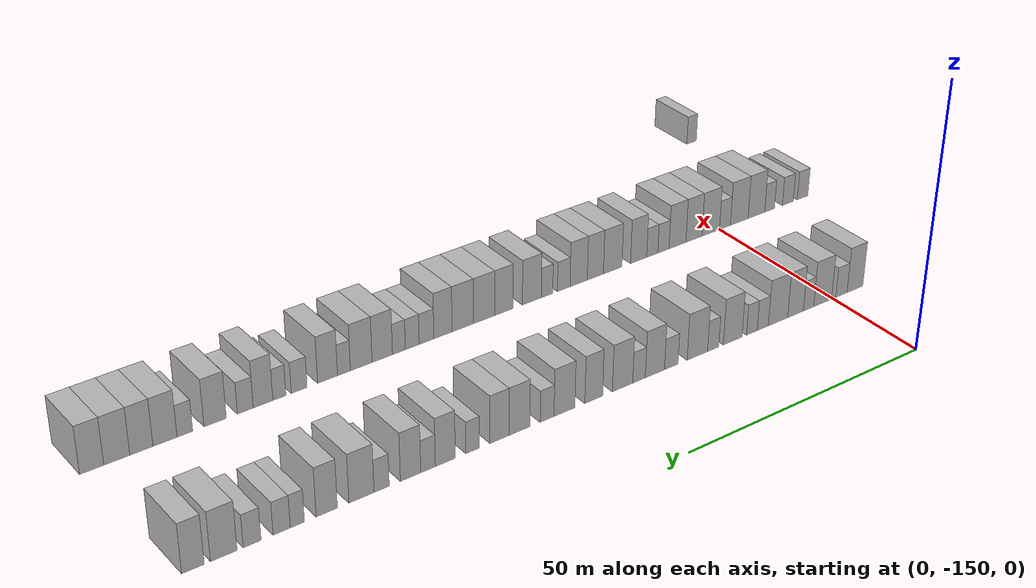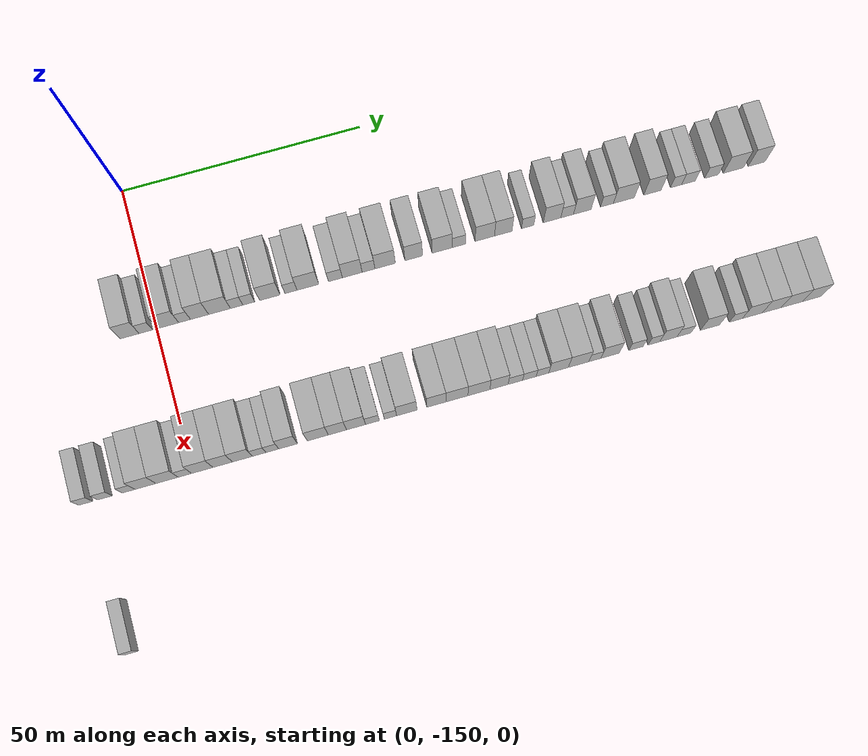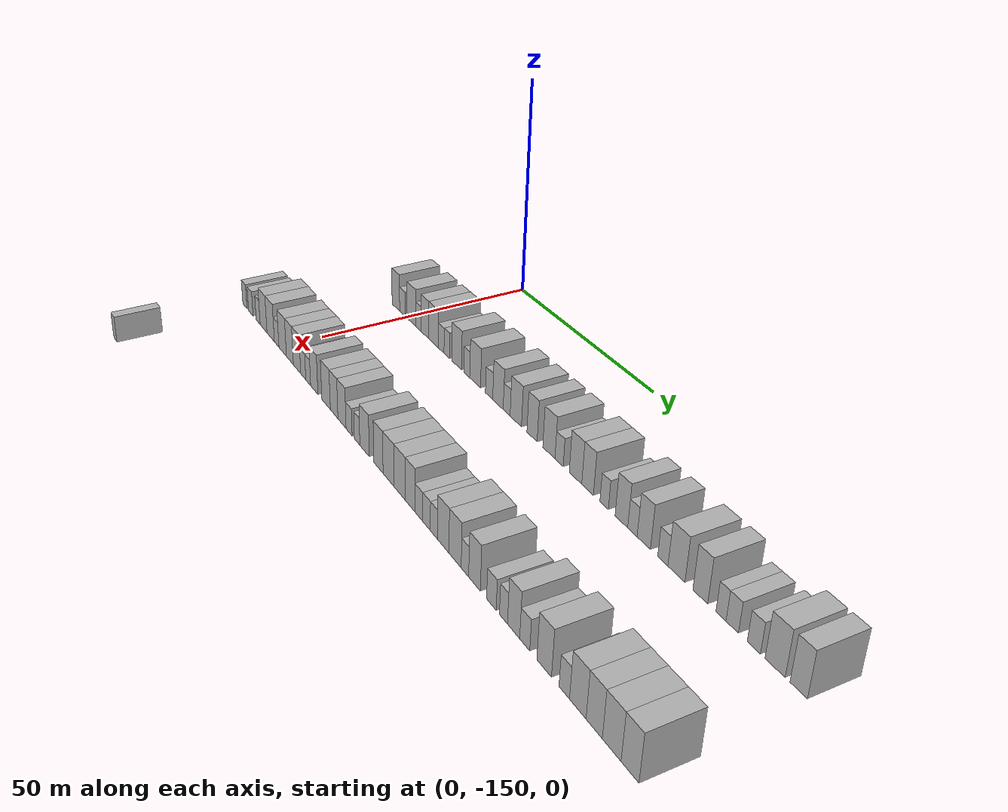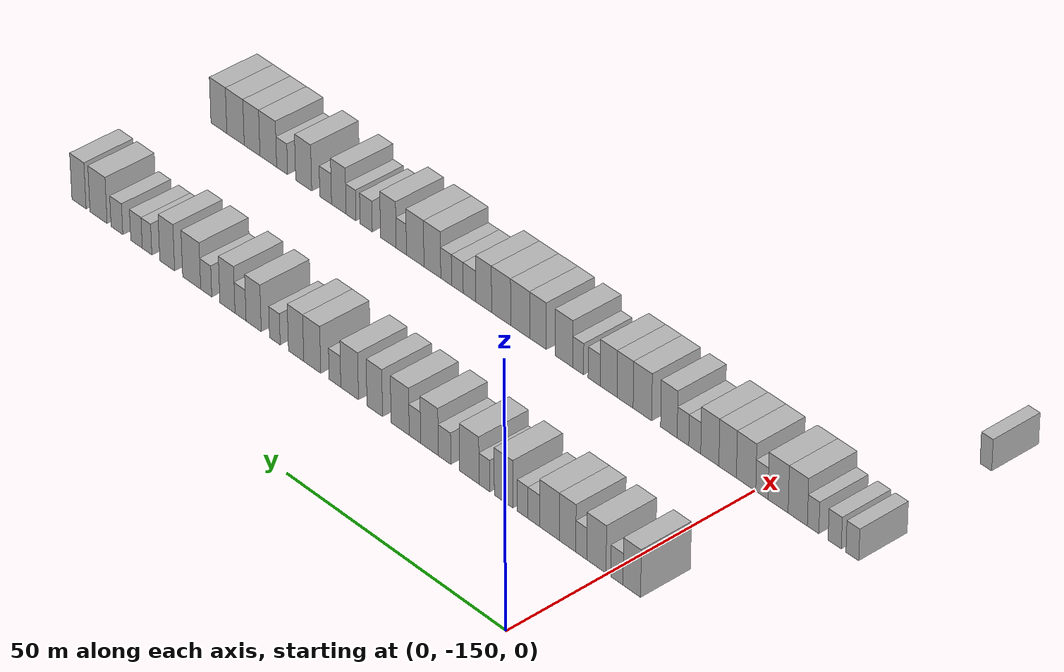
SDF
<sdf version="1.6">
 <world name="default">
  <model name="building_73">
   <static>1</static>
   <pose>25.0000 -155.4128 0 0.000000 0.000000 0.000000</pose>
   <link name="link">
    <pose>0 0 4.50 0 0 0</pose>
    <collision name="collision"><geometry><box><size>10.0000 3.8556 9.0000</size></box></geometry></collision>
    <visual name="visual">
     <cast_shadows>0</cast_shadows>
     <geometry><box><size>10.0000 3.8556 9.0000</size></box></geometry>
     <material>
      <script>
       <uri>model://HANNAS_wall/materials/scripts</uri>
       <uri>model://HANNAS_wall/materials/textures</uri>
       <name>vrc/HANNAS_wall</name>
      </script>
     </material>
    </visual>
   </link>
  </model>
  <model name="building_74">
   <static>1</static>
   <pose>25.0000 -152.1207 0 0.000000 0.000000 0.000000</pose>
   <link name="link">
    <pose>0 0 3.00 0 0 0</pose>
    <collision name="collision"><geometry><box><size>10.0000 2.7286 6.0000</size></box></geometry></collision>
    <visual name="visual">
     <cast_shadows>0</cast_shadows>
     <geometry><box><size>10.0000 2.7286 6.0000</size></box></geometry>
     <material>
      <script>
       <uri>model://HANNAS_wall/materials/scripts</uri>
       <uri>model://HANNAS_wall/materials/textures</uri>
       <name>vrc/HANNAS_wall</name>
      </script>
     </material>
    </visual>
   </link>
  </model>
  <model name="building_75">
   <static>1</static>
   <pose>25.0000 -147.6016 0 0.000000 0.000000 0.000000</pose>
   <link name="link">
    <pose>0 0 4.50 0 0 0</pose>
    <collision name="collision"><geometry><box><size>10.0000 4.3098 9.0000</size></box></geometry></collision>
    <visual name="visual">
     <cast_shadows>0</cast_shadows>
     <geometry><box><size>10.0000 4.3098 9.0000</size></box></geometry>
     <material>
      <script>
       <uri>model://HANNAS_wall/materials/scripts</uri>
       <uri>model://HANNAS_wall/materials/textures</uri>
       <name>vrc/HANNAS_wall</name>
      </script>
     </material>
    </visual>
   </link>
  </model>
  <model name="building_76">
   <static>1</static>
   <pose>25.0000 -144.2454 0 0.000000 0.000000 0.000000</pose>
   <link name="link">
    <pose>0 0 3.00 0 0 0</pose>
    <collision name="collision"><geometry><box><size>10.0000 2.4025 6.0000</size></box></geometry></collision>
    <visual name="visual">
     <cast_shadows>0</cast_shadows>
     <geometry><box><size>10.0000 2.4025 6.0000</size></box></geometry>
     <material>
      <script>
       <uri>model://HANNAS_wall/materials/scripts</uri>
       <uri>model://HANNAS_wall/materials/textures</uri>
       <name>vrc/HANNAS_wall</name>
      </script>
     </material>
    </visual>
   </link>
  </model>
  <model name="building_77">
   <static>1</static>
   <pose>25.0000 -141.1890 0 0.000000 0.000000 0.000000</pose>
   <link name="link">
    <pose>0 0 4.50 0 0 0</pose>
    <collision name="collision"><geometry><box><size>10.0000 3.7103 9.0000</size></box></geometry></collision>
    <visual name="visual">
     <cast_shadows>0</cast_shadows>
     <geometry><box><size>10.0000 3.7103 9.0000</size></box></geometry>
     <material>
      <script>
       <uri>model://HANNAS_wall/materials/scripts</uri>
       <uri>model://HANNAS_wall/materials/textures</uri>
       <name>vrc/HANNAS_wall</name>
      </script>
     </material>
    </visual>
   </link>
  </model>
  <model name="building_78">
   <static>1</static>
   <pose>25.0000 -137.1038 0 0.000000 0.000000 0.000000</pose>
   <link name="link">
    <pose>0 0 4.50 0 0 0</pose>
    <collision name="collision"><geometry><box><size>10.0000 4.4602 9.0000</size></box></geometry></collision>
    <visual name="visual">
     <cast_shadows>0</cast_shadows>
     <geometry><box><size>10.0000 4.4602 9.0000</size></box></geometry>
     <material>
      <script>
       <uri>model://HANNAS_wall/materials/scripts</uri>
       <uri>model://HANNAS_wall/materials/textures</uri>
       <name>vrc/HANNAS_wall</name>
      </script>
     </material>
    </visual>
   </link>
  </model>
  <model name="building_79">
   <static>1</static>
   <pose>25.0000 -133.5972 0 0.000000 0.000000 0.000000</pose>
   <link name="link">
    <pose>0 0 3.00 0 0 0</pose>
    <collision name="collision"><geometry><box><size>10.0000 2.5529 6.0000</size></box></geometry></collision>
    <visual name="visual">
     <cast_shadows>0</cast_shadows>
     <geometry><box><size>10.0000 2.5529 6.0000</size></box></geometry>
     <material>
      <script>
       <uri>model://HANNAS_wall/materials/scripts</uri>
       <uri>model://HANNAS_wall/materials/textures</uri>
       <name>vrc/HANNAS_wall</name>
      </script>
     </material>
    </visual>
   </link>
  </model>
  <model name="building_80">
   <static>1</static>
   <pose>25.0000 -131.0993 0 0.000000 0.000000 0.000000</pose>
   <link name="link">
    <pose>0 0 3.00 0 0 0</pose>
    <collision name="collision"><geometry><box><size>10.0000 2.4430 6.0000</size></box></geometry></collision>
    <visual name="visual">
     <cast_shadows>0</cast_shadows>
     <geometry><box><size>10.0000 2.4430 6.0000</size></box></geometry>
     <material>
      <script>
       <uri>model://HANNAS_wall/materials/scripts</uri>
       <uri>model://HANNAS_wall/materials/textures</uri>
       <name>vrc/HANNAS_wall</name>
      </script>
     </material>
    </visual>
   </link>
  </model>
  <model name="building_81">
   <static>1</static>
   <pose>25.0000 -126.7704 0 0.000000 0.000000 0.000000</pose>
   <link name="link">
    <pose>0 0 4.50 0 0 0</pose>
    <collision name="collision"><geometry><box><size>10.0000 4.2149 9.0000</size></box></geometry></collision>
    <visual name="visual">
     <cast_shadows>0</cast_shadows>
     <geometry><box><size>10.0000 4.2149 9.0000</size></box></geometry>
     <material>
      <script>
       <uri>model://HANNAS_wall/materials/scripts</uri>
       <uri>model://HANNAS_wall/materials/textures</uri>
       <name>vrc/HANNAS_wall</name>
      </script>
     </material>
    </visual>
   </link>
  </model>
  <model name="building_82">
   <static>1</static>
   <pose>25.0000 -122.4175 0 0.000000 0.000000 0.000000</pose>
   <link name="link">
    <pose>0 0 3.00 0 0 0</pose>
    <collision name="collision"><geometry><box><size>10.0000 2.4910 6.0000</size></box></geometry></collision>
    <visual name="visual">
     <cast_shadows>0</cast_shadows>
     <geometry><box><size>10.0000 2.4910 6.0000</size></box></geometry>
     <material>
      <script>
       <uri>model://HANNAS_wall/materials/scripts</uri>
       <uri>model://HANNAS_wall/materials/textures</uri>
       <name>vrc/HANNAS_wall</name>
      </script>
     </material>
    </visual>
   </link>
  </model>
  <model name="building_83">
   <static>1</static>
   <pose>25.0000 -118.9380 0 0.000000 0.000000 0.000000</pose>
   <link name="link">
    <pose>0 0 4.50 0 0 0</pose>
    <collision name="collision"><geometry><box><size>10.0000 4.4680 9.0000</size></box></geometry></collision>
    <visual name="visual">
     <cast_shadows>0</cast_shadows>
     <geometry><box><size>10.0000 4.4680 9.0000</size></box></geometry>
     <material>
      <script>
       <uri>model://HANNAS_wall/materials/scripts</uri>
       <uri>model://HANNAS_wall/materials/textures</uri>
       <name>vrc/HANNAS_wall</name>
      </script>
     </material>
    </visual>
   </link>
  </model>
  <model name="building_84">
   <static>1</static>
   <pose>25.0000 -113.2553 0 0.000000 0.000000 0.000000</pose>
   <link name="link">
    <pose>0 0 3.00 0 0 0</pose>
    <collision name="collision"><geometry><box><size>10.0000 2.8972 6.0000</size></box></geometry></collision>
    <visual name="visual">
     <cast_shadows>0</cast_shadows>
     <geometry><box><size>10.0000 2.8972 6.0000</size></box></geometry>
     <material>
      <script>
       <uri>model://HANNAS_wall/materials/scripts</uri>
       <uri>model://HANNAS_wall/materials/textures</uri>
       <name>vrc/HANNAS_wall</name>
      </script>
     </material>
    </visual>
   </link>
  </model>
  <model name="building_85">
   <static>1</static>
   <pose>25.0000 -109.7602 0 0.000000 0.000000 0.000000</pose>
   <link name="link">
    <pose>0 0 4.50 0 0 0</pose>
    <collision name="collision"><geometry><box><size>10.0000 4.0931 9.0000</size></box></geometry></collision>
    <visual name="visual">
     <cast_shadows>0</cast_shadows>
     <geometry><box><size>10.0000 4.0931 9.0000</size></box></geometry>
     <material>
      <script>
       <uri>model://HANNAS_wall/materials/scripts</uri>
       <uri>model://HANNAS_wall/materials/textures</uri>
       <name>vrc/HANNAS_wall</name>
      </script>
     </material>
    </visual>
   </link>
  </model>
  <model name="building_86">
   <static>1</static>
   <pose>25.0000 -106.3865 0 0.000000 0.000000 0.000000</pose>
   <link name="link">
    <pose>0 0 3.00 0 0 0</pose>
    <collision name="collision"><geometry><box><size>10.0000 2.6543 6.0000</size></box></geometry></collision>
    <visual name="visual">
     <cast_shadows>0</cast_shadows>
     <geometry><box><size>10.0000 2.6543 6.0000</size></box></geometry>
     <material>
      <script>
       <uri>model://HANNAS_wall/materials/scripts</uri>
       <uri>model://HANNAS_wall/materials/textures</uri>
       <name>vrc/HANNAS_wall</name>
      </script>
     </material>
    </visual>
   </link>
  </model>
  <model name="building_87">
   <static>1</static>
   <pose>25.0000 -102.9410 0 0.000000 0.000000 0.000000</pose>
   <link name="link">
    <pose>0 0 4.50 0 0 0</pose>
    <collision name="collision"><geometry><box><size>10.0000 4.2367 9.0000</size></box></geometry></collision>
    <visual name="visual">
     <cast_shadows>0</cast_shadows>
     <geometry><box><size>10.0000 4.2367 9.0000</size></box></geometry>
     <material>
      <script>
       <uri>model://HANNAS_wall/materials/scripts</uri>
       <uri>model://HANNAS_wall/materials/textures</uri>
       <name>vrc/HANNAS_wall</name>
      </script>
     </material>
    </visual>
   </link>
  </model>
  <model name="building_88">
   <static>1</static>
   <pose>25.0000 -96.9909 0 0.000000 0.000000 0.000000</pose>
   <link name="link">
    <pose>0 0 4.50 0 0 0</pose>
    <collision name="collision"><geometry><box><size>10.0000 3.6634 9.0000</size></box></geometry></collision>
    <visual name="visual">
     <cast_shadows>0</cast_shadows>
     <geometry><box><size>10.0000 3.6634 9.0000</size></box></geometry>
     <material>
      <script>
       <uri>model://HANNAS_wall/materials/scripts</uri>
       <uri>model://HANNAS_wall/materials/textures</uri>
       <name>vrc/HANNAS_wall</name>
      </script>
     </material>
    </visual>
   </link>
  </model>
  <model name="building_89">
   <static>1</static>
   <pose>25.0000 -91.0626 0 0.000000 0.000000 0.000000</pose>
   <link name="link">
    <pose>0 0 4.50 0 0 0</pose>
    <collision name="collision"><geometry><box><size>10.0000 4.1933 9.0000</size></box></geometry></collision>
    <visual name="visual">
     <cast_shadows>0</cast_shadows>
     <geometry><box><size>10.0000 4.1933 9.0000</size></box></geometry>
     <material>
      <script>
       <uri>model://HANNAS_wall/materials/scripts</uri>
       <uri>model://HANNAS_wall/materials/textures</uri>
       <name>vrc/HANNAS_wall</name>
      </script>
     </material>
    </visual>
   </link>
  </model>
  <model name="building_90">
   <static>1</static>
   <pose>25.0000 -87.5761 0 0.000000 0.000000 0.000000</pose>
   <link name="link">
    <pose>0 0 3.00 0 0 0</pose>
    <collision name="collision"><geometry><box><size>10.0000 2.7798 6.0000</size></box></geometry></collision>
    <visual name="visual">
     <cast_shadows>0</cast_shadows>
     <geometry><box><size>10.0000 2.7798 6.0000</size></box></geometry>
     <material>
      <script>
       <uri>model://HANNAS_wall/materials/scripts</uri>
       <uri>model://HANNAS_wall/materials/textures</uri>
       <name>vrc/HANNAS_wall</name>
      </script>
     </material>
    </visual>
   </link>
  </model>
  <model name="building_91">
   <static>1</static>
   <pose>25.0000 -82.1534 0 0.000000 0.000000 0.000000</pose>
   <link name="link">
    <pose>0 0 4.50 0 0 0</pose>
    <collision name="collision"><geometry><box><size>10.0000 4.0656 9.0000</size></box></geometry></collision>
    <visual name="visual">
     <cast_shadows>0</cast_shadows>
     <geometry><box><size>10.0000 4.0656 9.0000</size></box></geometry>
     <material>
      <script>
       <uri>model://HANNAS_wall/materials/scripts</uri>
       <uri>model://HANNAS_wall/materials/textures</uri>
       <name>vrc/HANNAS_wall</name>
      </script>
     </material>
    </visual>
   </link>
  </model>
  <model name="building_92">
   <static>1</static>
   <pose>25.0000 -78.2792 0 0.000000 0.000000 0.000000</pose>
   <link name="link">
    <pose>0 0 4.50 0 0 0</pose>
    <collision name="collision"><geometry><box><size>10.0000 3.6828 9.0000</size></box></geometry></collision>
    <visual name="visual">
     <cast_shadows>0</cast_shadows>
     <geometry><box><size>10.0000 3.6828 9.0000</size></box></geometry>
     <material>
      <script>
       <uri>model://HANNAS_wall/materials/scripts</uri>
       <uri>model://HANNAS_wall/materials/textures</uri>
       <name>vrc/HANNAS_wall</name>
      </script>
     </material>
    </visual>
   </link>
  </model>
  <model name="building_93">
   <static>1</static>
   <pose>25.0000 -73.1482 0 0.000000 0.000000 0.000000</pose>
   <link name="link">
    <pose>0 0 3.00 0 0 0</pose>
    <collision name="collision"><geometry><box><size>10.0000 2.5792 6.0000</size></box></geometry></collision>
    <visual name="visual">
     <cast_shadows>0</cast_shadows>
     <geometry><box><size>10.0000 2.5792 6.0000</size></box></geometry>
     <material>
      <script>
       <uri>model://HANNAS_wall/materials/scripts</uri>
       <uri>model://HANNAS_wall/materials/textures</uri>
       <name>vrc/HANNAS_wall</name>
      </script>
     </material>
    </visual>
   </link>
  </model>
  <model name="building_94">
   <static>1</static>
   <pose>25.0000 -68.0080 0 0.000000 0.000000 0.000000</pose>
   <link name="link">
    <pose>0 0 4.50 0 0 0</pose>
    <collision name="collision"><geometry><box><size>10.0000 3.7013 9.0000</size></box></geometry></collision>
    <visual name="visual">
     <cast_shadows>0</cast_shadows>
     <geometry><box><size>10.0000 3.7013 9.0000</size></box></geometry>
     <material>
      <script>
       <uri>model://HANNAS_wall/materials/scripts</uri>
       <uri>model://HANNAS_wall/materials/textures</uri>
       <name>vrc/HANNAS_wall</name>
      </script>
     </material>
    </visual>
   </link>
  </model>
  <model name="building_95">
   <static>1</static>
   <pose>25.0000 -64.8104 0 0.000000 0.000000 0.000000</pose>
   <link name="link">
    <pose>0 0 3.00 0 0 0</pose>
    <collision name="collision"><geometry><box><size>10.0000 2.6939 6.0000</size></box></geometry></collision>
    <visual name="visual">
     <cast_shadows>0</cast_shadows>
     <geometry><box><size>10.0000 2.6939 6.0000</size></box></geometry>
     <material>
      <script>
       <uri>model://HANNAS_wall/materials/scripts</uri>
       <uri>model://HANNAS_wall/materials/textures</uri>
       <name>vrc/HANNAS_wall</name>
      </script>
     </material>
    </visual>
   </link>
  </model>
  <model name="building_96">
   <static>1</static>
   <pose>25.0000 -61.6080 0 0.000000 0.000000 0.000000</pose>
   <link name="link">
    <pose>0 0 4.50 0 0 0</pose>
    <collision name="collision"><geometry><box><size>10.0000 3.7109 9.0000</size></box></geometry></collision>
    <visual name="visual">
     <cast_shadows>0</cast_shadows>
     <geometry><box><size>10.0000 3.7109 9.0000</size></box></geometry>
     <material>
      <script>
       <uri>model://HANNAS_wall/materials/scripts</uri>
       <uri>model://HANNAS_wall/materials/textures</uri>
       <name>vrc/HANNAS_wall</name>
      </script>
     </material>
    </visual>
   </link>
  </model>
  <model name="building_97">
   <static>1</static>
   <pose>25.0000 -56.3854 0 0.000000 0.000000 0.000000</pose>
   <link name="link">
    <pose>0 0 3.00 0 0 0</pose>
    <collision name="collision"><geometry><box><size>10.0000 2.7343 6.0000</size></box></geometry></collision>
    <visual name="visual">
     <cast_shadows>0</cast_shadows>
     <geometry><box><size>10.0000 2.7343 6.0000</size></box></geometry>
     <material>
      <script>
       <uri>model://HANNAS_wall/materials/scripts</uri>
       <uri>model://HANNAS_wall/materials/textures</uri>
       <name>vrc/HANNAS_wall</name>
      </script>
     </material>
    </visual>
   </link>
  </model>
  <model name="building_98">
   <static>1</static>
   <pose>25.0000 -52.7911 0 0.000000 0.000000 0.000000</pose>
   <link name="link">
    <pose>0 0 4.50 0 0 0</pose>
    <collision name="collision"><geometry><box><size>10.0000 4.4541 9.0000</size></box></geometry></collision>
    <visual name="visual">
     <cast_shadows>0</cast_shadows>
     <geometry><box><size>10.0000 4.4541 9.0000</size></box></geometry>
     <material>
      <script>
       <uri>model://HANNAS_wall/materials/scripts</uri>
       <uri>model://HANNAS_wall/materials/textures</uri>
       <name>vrc/HANNAS_wall</name>
      </script>
     </material>
    </visual>
   </link>
  </model>
  <model name="building_99">
   <static>1</static>
   <pose>25.0000 -46.7164 0 0.000000 0.000000 0.000000</pose>
   <link name="link">
    <pose>0 0 4.50 0 0 0</pose>
    <collision name="collision"><geometry><box><size>10.0000 3.6953 9.0000</size></box></geometry></collision>
    <visual name="visual">
     <cast_shadows>0</cast_shadows>
     <geometry><box><size>10.0000 3.6953 9.0000</size></box></geometry>
     <material>
      <script>
       <uri>model://HANNAS_wall/materials/scripts</uri>
       <uri>model://HANNAS_wall/materials/textures</uri>
       <name>vrc/HANNAS_wall</name>
      </script>
     </material>
    </visual>
   </link>
  </model>
  <model name="building_100">
   <static>1</static>
   <pose>25.0000 -41.6667 0 0.000000 0.000000 0.000000</pose>
   <link name="link">
    <pose>0 0 3.00 0 0 0</pose>
    <collision name="collision"><geometry><box><size>10.0000 2.4041 6.0000</size></box></geometry></collision>
    <visual name="visual">
     <cast_shadows>0</cast_shadows>
     <geometry><box><size>10.0000 2.4041 6.0000</size></box></geometry>
     <material>
      <script>
       <uri>model://HANNAS_wall/materials/scripts</uri>
       <uri>model://HANNAS_wall/materials/textures</uri>
       <name>vrc/HANNAS_wall</name>
      </script>
     </material>
    </visual>
   </link>
  </model>
  <model name="building_101">
   <static>1</static>
   <pose>25.0000 -39.0135 0 0.000000 0.000000 0.000000</pose>
   <link name="link">
    <pose>0 0 3.00 0 0 0</pose>
    <collision name="collision"><geometry><box><size>10.0000 2.9023 6.0000</size></box></geometry></collision>
    <visual name="visual">
     <cast_shadows>0</cast_shadows>
     <geometry><box><size>10.0000 2.9023 6.0000</size></box></geometry>
     <material>
      <script>
       <uri>model://HANNAS_wall/materials/scripts</uri>
       <uri>model://HANNAS_wall/materials/textures</uri>
       <name>vrc/HANNAS_wall</name>
      </script>
     </material>
    </visual>
   </link>
  </model>
  <model name="building_102">
   <static>1</static>
   <pose>25.0000 -34.0778 0 0.000000 0.000000 0.000000</pose>
   <link name="link">
    <pose>0 0 3.00 0 0 0</pose>
    <collision name="collision"><geometry><box><size>10.0000 2.9692 6.0000</size></box></geometry></collision>
    <visual name="visual">
     <cast_shadows>0</cast_shadows>
     <geometry><box><size>10.0000 2.9692 6.0000</size></box></geometry>
     <material>
      <script>
       <uri>model://HANNAS_wall/materials/scripts</uri>
       <uri>model://HANNAS_wall/materials/textures</uri>
       <name>vrc/HANNAS_wall</name>
      </script>
     </material>
    </visual>
   </link>
  </model>
  <model name="building_103">
   <static>1</static>
   <pose>25.0000 -29.4175 0 0.000000 0.000000 0.000000</pose>
   <link name="link">
    <pose>0 0 4.50 0 0 0</pose>
    <collision name="collision"><geometry><box><size>10.0000 4.3514 9.0000</size></box></geometry></collision>
    <visual name="visual">
     <cast_shadows>0</cast_shadows>
     <geometry><box><size>10.0000 4.3514 9.0000</size></box></geometry>
     <material>
      <script>
       <uri>model://HANNAS_wall/materials/scripts</uri>
       <uri>model://HANNAS_wall/materials/textures</uri>
       <name>vrc/HANNAS_wall</name>
      </script>
     </material>
    </visual>
   </link>
  </model>
  <model name="building_104">
   <static>1</static>
   <pose>25.0000 -24.4297 0 0.000000 0.000000 0.000000</pose>
   <link name="link">
    <pose>0 0 4.50 0 0 0</pose>
    <collision name="collision"><geometry><box><size>10.0000 3.6242 9.0000</size></box></geometry></collision>
    <visual name="visual">
     <cast_shadows>0</cast_shadows>
     <geometry><box><size>10.0000 3.6242 9.0000</size></box></geometry>
     <material>
      <script>
       <uri>model://HANNAS_wall/materials/scripts</uri>
       <uri>model://HANNAS_wall/materials/textures</uri>
       <name>vrc/HANNAS_wall</name>
      </script>
     </material>
    </visual>
   </link>
  </model>
  <model name="building_299">
   <static>1</static>
   <pose>55.0000 -171.1058 0 0.000000 0.000000 0.000000</pose>
   <link name="link">
    <pose>0 0 3.00 0 0 0</pose>
    <collision name="collision"><geometry><box><size>10.0000 2.7562 6.0000</size></box></geometry></collision>
    <visual name="visual">
     <cast_shadows>0</cast_shadows>
     <geometry><box><size>10.0000 2.7562 6.0000</size></box></geometry>
     <material>
      <script>
       <uri>model://HANNAS_wall/materials/scripts</uri>
       <uri>model://HANNAS_wall/materials/textures</uri>
       <name>vrc/HANNAS_wall</name>
      </script>
     </material>
    </visual>
   </link>
  </model>
  <model name="building_300">
   <static>1</static>
   <pose>55.0000 -167.3032 0 0.000000 0.000000 0.000000</pose>
   <link name="link">
    <pose>0 0 3.00 0 0 0</pose>
    <collision name="collision"><geometry><box><size>10.0000 2.8488 6.0000</size></box></geometry></collision>
    <visual name="visual">
     <cast_shadows>0</cast_shadows>
     <geometry><box><size>10.0000 2.8488 6.0000</size></box></geometry>
     <material>
      <script>
       <uri>model://HANNAS_wall/materials/scripts</uri>
       <uri>model://HANNAS_wall/materials/textures</uri>
       <name>vrc/HANNAS_wall</name>
      </script>
     </material>
    </visual>
   </link>
  </model>
  <model name="building_301">
   <static>1</static>
   <pose>55.0000 -162.6323 0 0.000000 0.000000 0.000000</pose>
   <link name="link">
    <pose>0 0 3.00 0 0 0</pose>
    <collision name="collision"><geometry><box><size>10.0000 2.4931 6.0000</size></box></geometry></collision>
    <visual name="visual">
     <cast_shadows>0</cast_shadows>
     <geometry><box><size>10.0000 2.4931 6.0000</size></box></geometry>
     <material>
      <script>
       <uri>model://HANNAS_wall/materials/scripts</uri>
       <uri>model://HANNAS_wall/materials/textures</uri>
       <name>vrc/HANNAS_wall</name>
      </script>
     </material>
    </visual>
   </link>
  </model>
  <model name="building_302">
   <static>1</static>
   <pose>55.0000 -159.2932 0 0.000000 0.000000 0.000000</pose>
   <link name="link">
    <pose>0 0 4.50 0 0 0</pose>
    <collision name="collision"><geometry><box><size>10.0000 4.1851 9.0000</size></box></geometry></collision>
    <visual name="visual">
     <cast_shadows>0</cast_shadows>
     <geometry><box><size>10.0000 4.1851 9.0000</size></box></geometry>
     <material>
      <script>
       <uri>model://HANNAS_wall/materials/scripts</uri>
       <uri>model://HANNAS_wall/materials/textures</uri>
       <name>vrc/HANNAS_wall</name>
      </script>
     </material>
    </visual>
   </link>
  </model>
  <model name="building_303">
   <static>1</static>
   <pose>55.0000 -154.9907 0 0.000000 0.000000 0.000000</pose>
   <link name="link">
    <pose>0 0 4.50 0 0 0</pose>
    <collision name="collision"><geometry><box><size>10.0000 4.4198 9.0000</size></box></geometry></collision>
    <visual name="visual">
     <cast_shadows>0</cast_shadows>
     <geometry><box><size>10.0000 4.4198 9.0000</size></box></geometry>
     <material>
      <script>
       <uri>model://HANNAS_wall/materials/scripts</uri>
       <uri>model://HANNAS_wall/materials/textures</uri>
       <name>vrc/HANNAS_wall</name>
      </script>
     </material>
    </visual>
   </link>
  </model>
  <model name="building_304">
   <static>1</static>
   <pose>55.0000 -151.4435 0 0.000000 0.000000 0.000000</pose>
   <link name="link">
    <pose>0 0 3.00 0 0 0</pose>
    <collision name="collision"><geometry><box><size>10.0000 2.6746 6.0000</size></box></geometry></collision>
    <visual name="visual">
     <cast_shadows>0</cast_shadows>
     <geometry><box><size>10.0000 2.6746 6.0000</size></box></geometry>
     <material>
      <script>
       <uri>model://HANNAS_wall/materials/scripts</uri>
       <uri>model://HANNAS_wall/materials/textures</uri>
       <name>vrc/HANNAS_wall</name>
      </script>
     </material>
    </visual>
   </link>
  </model>
  <model name="building_305">
   <static>1</static>
   <pose>55.0000 -147.9734 0 0.000000 0.000000 0.000000</pose>
   <link name="link">
    <pose>0 0 4.50 0 0 0</pose>
    <collision name="collision"><geometry><box><size>10.0000 4.2657 9.0000</size></box></geometry></collision>
    <visual name="visual">
     <cast_shadows>0</cast_shadows>
     <geometry><box><size>10.0000 4.2657 9.0000</size></box></geometry>
     <material>
      <script>
       <uri>model://HANNAS_wall/materials/scripts</uri>
       <uri>model://HANNAS_wall/materials/textures</uri>
       <name>vrc/HANNAS_wall</name>
      </script>
     </material>
    </visual>
   </link>
  </model>
  <model name="building_306">
   <static>1</static>
   <pose>55.0000 -143.8952 0 0.000000 0.000000 0.000000</pose>
   <link name="link">
    <pose>0 0 4.50 0 0 0</pose>
    <collision name="collision"><geometry><box><size>10.0000 3.8908 9.0000</size></box></geometry></collision>
    <visual name="visual">
     <cast_shadows>0</cast_shadows>
     <geometry><box><size>10.0000 3.8908 9.0000</size></box></geometry>
     <material>
      <script>
       <uri>model://HANNAS_wall/materials/scripts</uri>
       <uri>model://HANNAS_wall/materials/textures</uri>
       <name>vrc/HANNAS_wall</name>
      </script>
     </material>
    </visual>
   </link>
  </model>
  <model name="building_307">
   <static>1</static>
   <pose>55.0000 -139.9321 0 0.000000 0.000000 0.000000</pose>
   <link name="link">
    <pose>0 0 4.50 0 0 0</pose>
    <collision name="collision"><geometry><box><size>10.0000 4.0353 9.0000</size></box></geometry></collision>
    <visual name="visual">
     <cast_shadows>0</cast_shadows>
     <geometry><box><size>10.0000 4.0353 9.0000</size></box></geometry>
     <material>
      <script>
       <uri>model://HANNAS_wall/materials/scripts</uri>
       <uri>model://HANNAS_wall/materials/textures</uri>
       <name>vrc/HANNAS_wall</name>
      </script>
     </material>
    </visual>
   </link>
  </model>
  <model name="building_308">
   <static>1</static>
   <pose>55.0000 -136.5810 0 0.000000 0.000000 0.000000</pose>
   <link name="link">
    <pose>0 0 3.00 0 0 0</pose>
    <collision name="collision"><geometry><box><size>10.0000 2.6670 6.0000</size></box></geometry></collision>
    <visual name="visual">
     <cast_shadows>0</cast_shadows>
     <geometry><box><size>10.0000 2.6670 6.0000</size></box></geometry>
     <material>
      <script>
       <uri>model://HANNAS_wall/materials/scripts</uri>
       <uri>model://HANNAS_wall/materials/textures</uri>
       <name>vrc/HANNAS_wall</name>
      </script>
     </material>
    </visual>
   </link>
  </model>
  <model name="building_309">
   <static>1</static>
   <pose>55.0000 -133.9487 0 0.000000 0.000000 0.000000</pose>
   <link name="link">
    <pose>0 0 3.00 0 0 0</pose>
    <collision name="collision"><geometry><box><size>10.0000 2.5976 6.0000</size></box></geometry></collision>
    <visual name="visual">
     <cast_shadows>0</cast_shadows>
     <geometry><box><size>10.0000 2.5976 6.0000</size></box></geometry>
     <material>
      <script>
       <uri>model://HANNAS_wall/materials/scripts</uri>
       <uri>model://HANNAS_wall/materials/textures</uri>
       <name>vrc/HANNAS_wall</name>
      </script>
     </material>
    </visual>
   </link>
  </model>
  <model name="building_310">
   <static>1</static>
   <pose>55.0000 -130.7793 0 0.000000 0.000000 0.000000</pose>
   <link name="link">
    <pose>0 0 4.50 0 0 0</pose>
    <collision name="collision"><geometry><box><size>10.0000 3.7413 9.0000</size></box></geometry></collision>
    <visual name="visual">
     <cast_shadows>0</cast_shadows>
     <geometry><box><size>10.0000 3.7413 9.0000</size></box></geometry>
     <material>
      <script>
       <uri>model://HANNAS_wall/materials/scripts</uri>
       <uri>model://HANNAS_wall/materials/textures</uri>
       <name>vrc/HANNAS_wall</name>
      </script>
     </material>
    </visual>
   </link>
  </model>
  <model name="building_311">
   <static>1</static>
   <pose>55.0000 -124.7937 0 0.000000 0.000000 0.000000</pose>
   <link name="link">
    <pose>0 0 4.50 0 0 0</pose>
    <collision name="collision"><geometry><box><size>10.0000 4.2299 9.0000</size></box></geometry></collision>
    <visual name="visual">
     <cast_shadows>0</cast_shadows>
     <geometry><box><size>10.0000 4.2299 9.0000</size></box></geometry>
     <material>
      <script>
       <uri>model://HANNAS_wall/materials/scripts</uri>
       <uri>model://HANNAS_wall/materials/textures</uri>
       <name>vrc/HANNAS_wall</name>
      </script>
     </material>
    </visual>
   </link>
  </model>
  <model name="building_312">
   <static>1</static>
   <pose>55.0000 -120.8495 0 0.000000 0.000000 0.000000</pose>
   <link name="link">
    <pose>0 0 4.50 0 0 0</pose>
    <collision name="collision"><geometry><box><size>10.0000 3.6585 9.0000</size></box></geometry></collision>
    <visual name="visual">
     <cast_shadows>0</cast_shadows>
     <geometry><box><size>10.0000 3.6585 9.0000</size></box></geometry>
     <material>
      <script>
       <uri>model://HANNAS_wall/materials/scripts</uri>
       <uri>model://HANNAS_wall/materials/textures</uri>
       <name>vrc/HANNAS_wall</name>
      </script>
     </material>
    </visual>
   </link>
  </model>
  <model name="building_313">
   <static>1</static>
   <pose>55.0000 -117.0965 0 0.000000 0.000000 0.000000</pose>
   <link name="link">
    <pose>0 0 4.50 0 0 0</pose>
    <collision name="collision"><geometry><box><size>10.0000 3.8475 9.0000</size></box></geometry></collision>
    <visual name="visual">
     <cast_shadows>0</cast_shadows>
     <geometry><box><size>10.0000 3.8475 9.0000</size></box></geometry>
     <material>
      <script>
       <uri>model://HANNAS_wall/materials/scripts</uri>
       <uri>model://HANNAS_wall/materials/textures</uri>
       <name>vrc/HANNAS_wall</name>
      </script>
     </material>
    </visual>
   </link>
  </model>
  <model name="building_314">
   <static>1</static>
   <pose>55.0000 -113.7699 0 0.000000 0.000000 0.000000</pose>
   <link name="link">
    <pose>0 0 3.00 0 0 0</pose>
    <collision name="collision"><geometry><box><size>10.0000 2.8058 6.0000</size></box></geometry></collision>
    <visual name="visual">
     <cast_shadows>0</cast_shadows>
     <geometry><box><size>10.0000 2.8058 6.0000</size></box></geometry>
     <material>
      <script>
       <uri>model://HANNAS_wall/materials/scripts</uri>
       <uri>model://HANNAS_wall/materials/textures</uri>
       <name>vrc/HANNAS_wall</name>
      </script>
     </material>
    </visual>
   </link>
  </model>
  <model name="building_315">
   <static>1</static>
   <pose>55.0000 -110.1218 0 0.000000 0.000000 0.000000</pose>
   <link name="link">
    <pose>0 0 3.00 0 0 0</pose>
    <collision name="collision"><geometry><box><size>10.0000 2.4904 6.0000</size></box></geometry></collision>
    <visual name="visual">
     <cast_shadows>0</cast_shadows>
     <geometry><box><size>10.0000 2.4904 6.0000</size></box></geometry>
     <material>
      <script>
       <uri>model://HANNAS_wall/materials/scripts</uri>
       <uri>model://HANNAS_wall/materials/textures</uri>
       <name>vrc/HANNAS_wall</name>
      </script>
     </material>
    </visual>
   </link>
  </model>
  <model name="building_316">
   <static>1</static>
   <pose>55.0000 -106.8015 0 0.000000 0.000000 0.000000</pose>
   <link name="link">
    <pose>0 0 4.50 0 0 0</pose>
    <collision name="collision"><geometry><box><size>10.0000 4.1501 9.0000</size></box></geometry></collision>
    <visual name="visual">
     <cast_shadows>0</cast_shadows>
     <geometry><box><size>10.0000 4.1501 9.0000</size></box></geometry>
     <material>
      <script>
       <uri>model://HANNAS_wall/materials/scripts</uri>
       <uri>model://HANNAS_wall/materials/textures</uri>
       <name>vrc/HANNAS_wall</name>
      </script>
     </material>
    </visual>
   </link>
  </model>
  <model name="building_317">
   <static>1</static>
   <pose>55.0000 -100.7740 0 0.000000 0.000000 0.000000</pose>
   <link name="link">
    <pose>0 0 4.50 0 0 0</pose>
    <collision name="collision"><geometry><box><size>10.0000 3.9050 9.0000</size></box></geometry></collision>
    <visual name="visual">
     <cast_shadows>0</cast_shadows>
     <geometry><box><size>10.0000 3.9050 9.0000</size></box></geometry>
     <material>
      <script>
       <uri>model://HANNAS_wall/materials/scripts</uri>
       <uri>model://HANNAS_wall/materials/textures</uri>
       <name>vrc/HANNAS_wall</name>
      </script>
     </material>
    </visual>
   </link>
  </model>
  <model name="building_318">
   <static>1</static>
   <pose>55.0000 -96.5962 0 0.000000 0.000000 0.000000</pose>
   <link name="link">
    <pose>0 0 4.50 0 0 0</pose>
    <collision name="collision"><geometry><box><size>10.0000 4.4507 9.0000</size></box></geometry></collision>
    <visual name="visual">
     <cast_shadows>0</cast_shadows>
     <geometry><box><size>10.0000 4.4507 9.0000</size></box></geometry>
     <material>
      <script>
       <uri>model://HANNAS_wall/materials/scripts</uri>
       <uri>model://HANNAS_wall/materials/textures</uri>
       <name>vrc/HANNAS_wall</name>
      </script>
     </material>
    </visual>
   </link>
  </model>
  <model name="building_319">
   <static>1</static>
   <pose>55.0000 -92.1281 0 0.000000 0.000000 0.000000</pose>
   <link name="link">
    <pose>0 0 4.50 0 0 0</pose>
    <collision name="collision"><geometry><box><size>10.0000 4.4854 9.0000</size></box></geometry></collision>
    <visual name="visual">
     <cast_shadows>0</cast_shadows>
     <geometry><box><size>10.0000 4.4854 9.0000</size></box></geometry>
     <material>
      <script>
       <uri>model://HANNAS_wall/materials/scripts</uri>
       <uri>model://HANNAS_wall/materials/textures</uri>
       <name>vrc/HANNAS_wall</name>
      </script>
     </material>
    </visual>
   </link>
  </model>
  <model name="building_320">
   <static>1</static>
   <pose>55.0000 -88.0190 0 0.000000 0.000000 0.000000</pose>
   <link name="link">
    <pose>0 0 4.50 0 0 0</pose>
    <collision name="collision"><geometry><box><size>10.0000 3.7328 9.0000</size></box></geometry></collision>
    <visual name="visual">
     <cast_shadows>0</cast_shadows>
     <geometry><box><size>10.0000 3.7328 9.0000</size></box></geometry>
     <material>
      <script>
       <uri>model://HANNAS_wall/materials/scripts</uri>
       <uri>model://HANNAS_wall/materials/textures</uri>
       <name>vrc/HANNAS_wall</name>
      </script>
     </material>
    </visual>
   </link>
  </model>
  <model name="building_321">
   <static>1</static>
   <pose>55.0000 -84.6605 0 0.000000 0.000000 0.000000</pose>
   <link name="link">
    <pose>0 0 3.00 0 0 0</pose>
    <collision name="collision"><geometry><box><size>10.0000 2.9842 6.0000</size></box></geometry></collision>
    <visual name="visual">
     <cast_shadows>0</cast_shadows>
     <geometry><box><size>10.0000 2.9842 6.0000</size></box></geometry>
     <material>
      <script>
       <uri>model://HANNAS_wall/materials/scripts</uri>
       <uri>model://HANNAS_wall/materials/textures</uri>
       <name>vrc/HANNAS_wall</name>
      </script>
     </material>
    </visual>
   </link>
  </model>
  <model name="building_322">
   <static>1</static>
   <pose>55.0000 -81.7713 0 0.000000 0.000000 0.000000</pose>
   <link name="link">
    <pose>0 0 3.00 0 0 0</pose>
    <collision name="collision"><geometry><box><size>10.0000 2.7943 6.0000</size></box></geometry></collision>
    <visual name="visual">
     <cast_shadows>0</cast_shadows>
     <geometry><box><size>10.0000 2.7943 6.0000</size></box></geometry>
     <material>
      <script>
       <uri>model://HANNAS_wall/materials/scripts</uri>
       <uri>model://HANNAS_wall/materials/textures</uri>
       <name>vrc/HANNAS_wall</name>
      </script>
     </material>
    </visual>
   </link>
  </model>
  <model name="building_323">
   <static>1</static>
   <pose>55.0000 -79.0899 0 0.000000 0.000000 0.000000</pose>
   <link name="link">
    <pose>0 0 3.00 0 0 0</pose>
    <collision name="collision"><geometry><box><size>10.0000 2.5684 6.0000</size></box></geometry></collision>
    <visual name="visual">
     <cast_shadows>0</cast_shadows>
     <geometry><box><size>10.0000 2.5684 6.0000</size></box></geometry>
     <material>
      <script>
       <uri>model://HANNAS_wall/materials/scripts</uri>
       <uri>model://HANNAS_wall/materials/textures</uri>
       <name>vrc/HANNAS_wall</name>
      </script>
     </material>
    </visual>
   </link>
  </model>
  <model name="building_324">
   <static>1</static>
   <pose>55.0000 -75.7897 0 0.000000 0.000000 0.000000</pose>
   <link name="link">
    <pose>0 0 4.50 0 0 0</pose>
    <collision name="collision"><geometry><box><size>10.0000 4.0321 9.0000</size></box></geometry></collision>
    <visual name="visual">
     <cast_shadows>0</cast_shadows>
     <geometry><box><size>10.0000 4.0321 9.0000</size></box></geometry>
     <material>
      <script>
       <uri>model://HANNAS_wall/materials/scripts</uri>
       <uri>model://HANNAS_wall/materials/textures</uri>
       <name>vrc/HANNAS_wall</name>
      </script>
     </material>
    </visual>
   </link>
  </model>
  <model name="building_325">
   <static>1</static>
   <pose>55.0000 -71.6602 0 0.000000 0.000000 0.000000</pose>
   <link name="link">
    <pose>0 0 4.50 0 0 0</pose>
    <collision name="collision"><geometry><box><size>10.0000 4.2270 9.0000</size></box></geometry></collision>
    <visual name="visual">
     <cast_shadows>0</cast_shadows>
     <geometry><box><size>10.0000 4.2270 9.0000</size></box></geometry>
     <material>
      <script>
       <uri>model://HANNAS_wall/materials/scripts</uri>
       <uri>model://HANNAS_wall/materials/textures</uri>
       <name>vrc/HANNAS_wall</name>
      </script>
     </material>
    </visual>
   </link>
  </model>
  <model name="building_326">
   <static>1</static>
   <pose>55.0000 -68.3037 0 0.000000 0.000000 0.000000</pose>
   <link name="link">
    <pose>0 0 3.00 0 0 0</pose>
    <collision name="collision"><geometry><box><size>10.0000 2.4861 6.0000</size></box></geometry></collision>
    <visual name="visual">
     <cast_shadows>0</cast_shadows>
     <geometry><box><size>10.0000 2.4861 6.0000</size></box></geometry>
     <material>
      <script>
       <uri>model://HANNAS_wall/materials/scripts</uri>
       <uri>model://HANNAS_wall/materials/textures</uri>
       <name>vrc/HANNAS_wall</name>
      </script>
     </material>
    </visual>
   </link>
  </model>
  <model name="building_327">
   <static>1</static>
   <pose>55.0000 -65.1562 0 0.000000 0.000000 0.000000</pose>
   <link name="link">
    <pose>0 0 4.50 0 0 0</pose>
    <collision name="collision"><geometry><box><size>10.0000 3.8089 9.0000</size></box></geometry></collision>
    <visual name="visual">
     <cast_shadows>0</cast_shadows>
     <geometry><box><size>10.0000 3.8089 9.0000</size></box></geometry>
     <material>
      <script>
       <uri>model://HANNAS_wall/materials/scripts</uri>
       <uri>model://HANNAS_wall/materials/textures</uri>
       <name>vrc/HANNAS_wall</name>
      </script>
     </material>
    </visual>
   </link>
  </model>
  <model name="building_328">
   <static>1</static>
   <pose>55.0000 -59.7604 0 0.000000 0.000000 0.000000</pose>
   <link name="link">
    <pose>0 0 3.00 0 0 0</pose>
    <collision name="collision"><geometry><box><size>10.0000 2.9827 6.0000</size></box></geometry></collision>
    <visual name="visual">
     <cast_shadows>0</cast_shadows>
     <geometry><box><size>10.0000 2.9827 6.0000</size></box></geometry>
     <material>
      <script>
       <uri>model://HANNAS_wall/materials/scripts</uri>
       <uri>model://HANNAS_wall/materials/textures</uri>
       <name>vrc/HANNAS_wall</name>
      </script>
     </material>
    </visual>
   </link>
  </model>
  <model name="building_329">
   <static>1</static>
   <pose>55.0000 -56.0558 0 0.000000 0.000000 0.000000</pose>
   <link name="link">
    <pose>0 0 3.00 0 0 0</pose>
    <collision name="collision"><geometry><box><size>10.0000 2.4265 6.0000</size></box></geometry></collision>
    <visual name="visual">
     <cast_shadows>0</cast_shadows>
     <geometry><box><size>10.0000 2.4265 6.0000</size></box></geometry>
     <material>
      <script>
       <uri>model://HANNAS_wall/materials/scripts</uri>
       <uri>model://HANNAS_wall/materials/textures</uri>
       <name>vrc/HANNAS_wall</name>
      </script>
     </material>
    </visual>
   </link>
  </model>
  <model name="building_330">
   <static>1</static>
   <pose>55.0000 -53.0422 0 0.000000 0.000000 0.000000</pose>
   <link name="link">
    <pose>0 0 4.50 0 0 0</pose>
    <collision name="collision"><geometry><box><size>10.0000 3.6009 9.0000</size></box></geometry></collision>
    <visual name="visual">
     <cast_shadows>0</cast_shadows>
     <geometry><box><size>10.0000 3.6009 9.0000</size></box></geometry>
     <material>
      <script>
       <uri>model://HANNAS_wall/materials/scripts</uri>
       <uri>model://HANNAS_wall/materials/textures</uri>
       <name>vrc/HANNAS_wall</name>
      </script>
     </material>
    </visual>
   </link>
  </model>
  <model name="building_331">
   <static>1</static>
   <pose>55.0000 -49.7952 0 0.000000 0.000000 0.000000</pose>
   <link name="link">
    <pose>0 0 3.00 0 0 0</pose>
    <collision name="collision"><geometry><box><size>10.0000 2.8930 6.0000</size></box></geometry></collision>
    <visual name="visual">
     <cast_shadows>0</cast_shadows>
     <geometry><box><size>10.0000 2.8930 6.0000</size></box></geometry>
     <material>
      <script>
       <uri>model://HANNAS_wall/materials/scripts</uri>
       <uri>model://HANNAS_wall/materials/textures</uri>
       <name>vrc/HANNAS_wall</name>
      </script>
     </material>
    </visual>
   </link>
  </model>
  <model name="building_332">
   <static>1</static>
   <pose>55.0000 -44.3472 0 0.000000 0.000000 0.000000</pose>
   <link name="link">
    <pose>0 0 4.50 0 0 0</pose>
    <collision name="collision"><geometry><box><size>10.0000 4.0031 9.0000</size></box></geometry></collision>
    <visual name="visual">
     <cast_shadows>0</cast_shadows>
     <geometry><box><size>10.0000 4.0031 9.0000</size></box></geometry>
     <material>
      <script>
       <uri>model://HANNAS_wall/materials/scripts</uri>
       <uri>model://HANNAS_wall/materials/textures</uri>
       <name>vrc/HANNAS_wall</name>
      </script>
     </material>
    </visual>
   </link>
  </model>
  <model name="building_333">
   <static>1</static>
   <pose>55.0000 -38.9681 0 0.000000 0.000000 0.000000</pose>
   <link name="link">
    <pose>0 0 3.00 0 0 0</pose>
    <collision name="collision"><geometry><box><size>10.0000 2.7551 6.0000</size></box></geometry></collision>
    <visual name="visual">
     <cast_shadows>0</cast_shadows>
     <geometry><box><size>10.0000 2.7551 6.0000</size></box></geometry>
     <material>
      <script>
       <uri>model://HANNAS_wall/materials/scripts</uri>
       <uri>model://HANNAS_wall/materials/textures</uri>
       <name>vrc/HANNAS_wall</name>
      </script>
     </material>
    </visual>
   </link>
  </model>
  <model name="building_334">
   <static>1</static>
   <pose>55.0000 -35.4965 0 0.000000 0.000000 0.000000</pose>
   <link name="link">
    <pose>0 0 4.50 0 0 0</pose>
    <collision name="collision"><geometry><box><size>10.0000 4.1882 9.0000</size></box></geometry></collision>
    <visual name="visual">
     <cast_shadows>0</cast_shadows>
     <geometry><box><size>10.0000 4.1882 9.0000</size></box></geometry>
     <material>
      <script>
       <uri>model://HANNAS_wall/materials/scripts</uri>
       <uri>model://HANNAS_wall/materials/textures</uri>
       <name>vrc/HANNAS_wall</name>
      </script>
     </material>
    </visual>
   </link>
  </model>
  <model name="building_335">
   <static>1</static>
   <pose>55.0000 -31.4186 0 0.000000 0.000000 0.000000</pose>
   <link name="link">
    <pose>0 0 4.50 0 0 0</pose>
    <collision name="collision"><geometry><box><size>10.0000 3.9675 9.0000</size></box></geometry></collision>
    <visual name="visual">
     <cast_shadows>0</cast_shadows>
     <geometry><box><size>10.0000 3.9675 9.0000</size></box></geometry>
     <material>
      <script>
       <uri>model://HANNAS_wall/materials/scripts</uri>
       <uri>model://HANNAS_wall/materials/textures</uri>
       <name>vrc/HANNAS_wall</name>
      </script>
     </material>
    </visual>
   </link>
  </model>
  <model name="building_336">
   <static>1</static>
   <pose>55.0000 -27.2306 0 0.000000 0.000000 0.000000</pose>
   <link name="link">
    <pose>0 0 4.50 0 0 0</pose>
    <collision name="collision"><geometry><box><size>10.0000 4.4087 9.0000</size></box></geometry></collision>
    <visual name="visual">
     <cast_shadows>0</cast_shadows>
     <geometry><box><size>10.0000 4.4087 9.0000</size></box></geometry>
     <material>
      <script>
       <uri>model://HANNAS_wall/materials/scripts</uri>
       <uri>model://HANNAS_wall/materials/textures</uri>
       <name>vrc/HANNAS_wall</name>
      </script>
     </material>
    </visual>
   </link>
  </model>
  <model name="building_337">
   <static>1</static>
   <pose>55.0000 -23.0028 0 0.000000 0.000000 0.000000</pose>
   <link name="link">
    <pose>0 0 4.50 0 0 0</pose>
    <collision name="collision"><geometry><box><size>10.0000 4.0469 9.0000</size></box></geometry></collision>
    <visual name="visual">
     <cast_shadows>0</cast_shadows>
     <geometry><box><size>10.0000 4.0469 9.0000</size></box></geometry>
     <material>
      <script>
       <uri>model://HANNAS_wall/materials/scripts</uri>
       <uri>model://HANNAS_wall/materials/textures</uri>
       <name>vrc/HANNAS_wall</name>
      </script>
     </material>
    </visual>
   </link>
  </model>
  <model name="building_530">
   <static>1</static>
   <pose>85.0000 -168.9561 0 0.000000 0.000000 0.000000</pose>
   <link name="link">
    <pose>0 0 3.00 0 0 0</pose>
    <collision name="collision"><geometry><box><size>10.0000 2.4931 6.0000</size></box></geometry></collision>
    <visual name="visual">
     <cast_shadows>0</cast_shadows>
     <geometry><box><size>10.0000 2.4931 6.0000</size></box></geometry>
     <material>
      <script>
       <uri>model://HANNAS_wall/materials/scripts</uri>
       <uri>model://HANNAS_wall/materials/textures</uri>
       <name>vrc/HANNAS_wall</name>
      </script>
     </material>
    </visual>
   </link>
  </model>
 </world>
</sdf>
